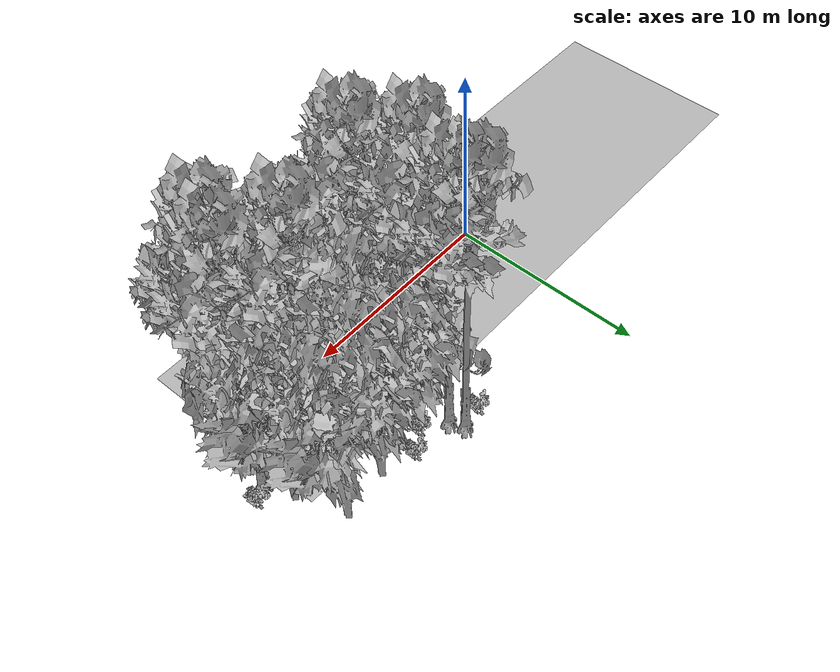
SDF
<sdf version="1.7">
 <world name="default">
  <model name="ground_plane">
   <static>1</static>
   <link name="link">
    <collision name="collision">
     <geometry><plane><normal>0 0 1</normal><size>100 100</size></plane></geometry>
     <surface><contact><ode><min_depth>0.01</min_depth><max_vel>0</max_vel></ode></contact></surface>
    </collision>
    <visual name="grass">
     <cast_shadows>0</cast_shadows>
     <geometry>
      <mesh>
       <scale>0.5814285714285714 0.18142857142857144 0.1</scale>
       <uri>file://grass_plane/meshes/grass_plane.dae</uri>
      </mesh>
     </geometry>
    </visual>
   </link>
  </model>
  <model name="Tree 20">
   <static>1</static>
   <pose>8.884630411769677 6.5836078916530845 0 1.57079 -0 0</pose>
   <link name="link">
    <collision name="collision">
     <geometry><mesh><scale>3.5 5 3.5</scale><uri>model://tree_9/meshes/tree_9.obj</uri></mesh></geometry>
    </collision>
    <visual name="visual">
     <geometry><mesh><scale>3.5 5 3.5</scale><uri>model://tree_9/meshes/tree_9.obj</uri></mesh></geometry>
    </visual>
   </link>
  </model>
  <model name="Tree 47">
   <static>1</static>
   <pose>9.675794774398533 2.2463097579045126 0 1.57079 -0 0</pose>
   <link name="link">
    <collision name="collision">
     <geometry><mesh><scale>3.5 5 3.5</scale><uri>model://tree_9/meshes/tree_9.obj</uri></mesh></geometry>
    </collision>
    <visual name="visual">
     <geometry><mesh><scale>3.5 5 3.5</scale><uri>model://tree_9/meshes/tree_9.obj</uri></mesh></geometry>
    </visual>
   </link>
  </model>
  <model name="Tree 59">
   <static>1</static>
   <pose>8.549104272013615 3.037445688734934 0 1.57079 -0 0</pose>
   <link name="link">
    <collision name="collision">
     <geometry><mesh><scale>3.5 5 3.5</scale><uri>model://tree_2/meshes/tree_2.obj</uri></mesh></geometry>
    </collision>
    <visual name="visual">
     <geometry><mesh><scale>3.5 5 3.5</scale><uri>model://tree_2/meshes/tree_2.obj</uri></mesh></geometry>
    </visual>
   </link>
  </model>
  <model name="Tree 64">
   <static>1</static>
   <pose>15.850261275609398 4.156127027135664 0 1.57079 -0 0</pose>
   <link name="link">
    <collision name="collision">
     <geometry><mesh><scale>3.5 5 3.5</scale><uri>model://tree_2/meshes/tree_2.obj</uri></mesh></geometry>
    </collision>
    <visual name="visual">
     <geometry><mesh><scale>3.5 5 3.5</scale><uri>model://tree_2/meshes/tree_2.obj</uri></mesh></geometry>
    </visual>
   </link>
  </model>
  <model name="Tree 103">
   <static>1</static>
   <pose>10.380141473272943 4.021757676331195 0 1.57079 -0 0</pose>
   <link name="link">
    <collision name="collision">
     <geometry><mesh><scale>3.5 5 3.5</scale><uri>model://tree_2/meshes/tree_2.obj</uri></mesh></geometry>
    </collision>
    <visual name="visual">
     <geometry><mesh><scale>3.5 5 3.5</scale><uri>model://tree_2/meshes/tree_2.obj</uri></mesh></geometry>
    </visual>
   </link>
  </model>
  <model name="Tree 134">
   <static>1</static>
   <pose>15.03134885523668 6.425880677965168 0 1.57079 -0 0</pose>
   <link name="link">
    <collision name="collision">
     <geometry><mesh><scale>3.5 5 3.5</scale><uri>model://tree_2/meshes/tree_2.obj</uri></mesh></geometry>
    </collision>
    <visual name="visual">
     <geometry><mesh><scale>3.5 5 3.5</scale><uri>model://tree_2/meshes/tree_2.obj</uri></mesh></geometry>
    </visual>
   </link>
  </model>
  <model name="Tree 139">
   <static>1</static>
   <pose>8.268799936547197 4.245124132416983 0 1.57079 -0 0</pose>
   <link name="link">
    <collision name="collision">
     <geometry><mesh><scale>3.5 5 3.5</scale><uri>model://tree_9/meshes/tree_9.obj</uri></mesh></geometry>
    </collision>
    <visual name="visual">
     <geometry><mesh><scale>3.5 5 3.5</scale><uri>model://tree_9/meshes/tree_9.obj</uri></mesh></geometry>
    </visual>
   </link>
  </model>
  <model name="Tree 152">
   <static>1</static>
   <pose>16.352432995173487 2.671429940965279 0 1.57079 -0 0</pose>
   <link name="link">
    <collision name="collision">
     <geometry><mesh><scale>3.5 5 3.5</scale><uri>model://tree_9/meshes/tree_9.obj</uri></mesh></geometry>
    </collision>
    <visual name="visual">
     <geometry><mesh><scale>3.5 5 3.5</scale><uri>model://tree_9/meshes/tree_9.obj</uri></mesh></geometry>
    </visual>
   </link>
  </model>
  <model name="Tree 165">
   <static>1</static>
   <pose>9.334816745533281 1.749533499932447 0 1.57079 -0 0</pose>
   <link name="link">
    <collision name="collision">
     <geometry><mesh><scale>3.5 5 3.5</scale><uri>model://tree_2/meshes/tree_2.obj</uri></mesh></geometry>
    </collision>
    <visual name="visual">
     <geometry><mesh><scale>3.5 5 3.5</scale><uri>model://tree_2/meshes/tree_2.obj</uri></mesh></geometry>
    </visual>
   </link>
  </model>
  <model name="Tree 253">
   <static>1</static>
   <pose>14.062127754926777 3.5908301212343545 0 1.57079 -0 0</pose>
   <link name="link">
    <collision name="collision">
     <geometry><mesh><scale>3.5 5 3.5</scale><uri>model://tree_9/meshes/tree_9.obj</uri></mesh></geometry>
    </collision>
    <visual name="visual">
     <geometry><mesh><scale>3.5 5 3.5</scale><uri>model://tree_9/meshes/tree_9.obj</uri></mesh></geometry>
    </visual>
   </link>
  </model>
  <model name="Tree 321">
   <static>1</static>
   <pose>9.345981192018506 1.0364678911690106 0 1.57079 -0 0</pose>
   <link name="link">
    <collision name="collision">
     <geometry><mesh><scale>3.5 5 3.5</scale><uri>model://tree_2/meshes/tree_2.obj</uri></mesh></geometry>
    </collision>
    <visual name="visual">
     <geometry><mesh><scale>3.5 5 3.5</scale><uri>model://tree_2/meshes/tree_2.obj</uri></mesh></geometry>
    </visual>
   </link>
  </model>
  <model name="Tree 332">
   <static>1</static>
   <pose>12.675262077874635 6.147937840983769 0 1.57079 -0 0</pose>
   <link name="link">
    <collision name="collision">
     <geometry><mesh><scale>3.5 5 3.5</scale><uri>model://tree_2/meshes/tree_2.obj</uri></mesh></geometry>
    </collision>
    <visual name="visual">
     <geometry><mesh><scale>3.5 5 3.5</scale><uri>model://tree_2/meshes/tree_2.obj</uri></mesh></geometry>
    </visual>
   </link>
  </model>
  <model name="Tree 352">
   <static>1</static>
   <pose>15.875128300795964 1.5041549247559942 0 1.57079 -0 0</pose>
   <link name="link">
    <collision name="collision">
     <geometry><mesh><scale>3.5 5 3.5</scale><uri>model://tree_9/meshes/tree_9.obj</uri></mesh></geometry>
    </collision>
    <visual name="visual">
     <geometry><mesh><scale>3.5 5 3.5</scale><uri>model://tree_9/meshes/tree_9.obj</uri></mesh></geometry>
    </visual>
   </link>
  </model>
  <model name="Tree 431">
   <static>1</static>
   <pose>8.601021629725501 7.2822944734730015 0 1.57079 -0 0</pose>
   <link name="link">
    <collision name="collision">
     <geometry><mesh><scale>3.5 5 3.5</scale><uri>model://tree_9/meshes/tree_9.obj</uri></mesh></geometry>
    </collision>
    <visual name="visual">
     <geometry><mesh><scale>3.5 5 3.5</scale><uri>model://tree_9/meshes/tree_9.obj</uri></mesh></geometry>
    </visual>
   </link>
  </model>
  <model name="Bush 45">
   <static>1</static>
   <pose>10.927154419139711 6.425829845174444 0 1.57079 -0 0</pose>
   <link name="link">
    <collision name="collision">
     <geometry><mesh><scale>2 2 2</scale><uri>model://bush_2/meshes/bush_2.obj</uri></mesh></geometry>
     <surface><contact><collide_without_contact>false</collide_without_contact></contact></surface>
    </collision>
    <visual name="visual">
     <geometry><mesh><scale>2 2 2</scale><uri>model://bush_2/meshes/bush_2.obj</uri></mesh></geometry>
    </visual>
   </link>
  </model>
  <model name="Bush 68">
   <static>1</static>
   <pose>13.503947892731553 4.327048822026953 0 1.57079 -0 0</pose>
   <link name="link">
    <collision name="collision">
     <geometry><mesh><scale>2 2 2</scale><uri>model://bush_3/meshes/bush_3.obj</uri></mesh></geometry>
     <surface><contact><collide_without_contact>false</collide_without_contact></contact></surface>
    </collision>
    <visual name="visual">
     <geometry><mesh><scale>2 2 2</scale><uri>model://bush_3/meshes/bush_3.obj</uri></mesh></geometry>
    </visual>
   </link>
  </model>
  <model name="Bush 99">
   <static>1</static>
   <pose>9.898636474722721 5.729131570955701 0 1.57079 -0 0</pose>
   <link name="link">
    <collision name="collision">
     <geometry><mesh><scale>2 2 2</scale><uri>model://bush_2/meshes/bush_2.obj</uri></mesh></geometry>
     <surface><contact><collide_without_contact>false</collide_without_contact></contact></surface>
    </collision>
    <visual name="visual">
     <geometry><mesh><scale>2 2 2</scale><uri>model://bush_2/meshes/bush_2.obj</uri></mesh></geometry>
    </visual>
   </link>
  </model>
  <model name="Bush 129">
   <static>1</static>
   <pose>9.296319956920556 -0.3870516530787942 0 1.57079 -0 0</pose>
   <link name="link">
    <collision name="collision">
     <geometry><mesh><scale>2 2 2</scale><uri>model://bush_2/meshes/bush_2.obj</uri></mesh></geometry>
     <surface><contact><collide_without_contact>false</collide_without_contact></contact></surface>
    </collision>
    <visual name="visual">
     <geometry><mesh><scale>2 2 2</scale><uri>model://bush_2/meshes/bush_2.obj</uri></mesh></geometry>
    </visual>
   </link>
  </model>
  <model name="Bush 175">
   <static>1</static>
   <pose>11.933636689424148 3.6874625579122338 0 1.57079 -0 0</pose>
   <link name="link">
    <collision name="collision">
     <geometry><mesh><scale>2 2 2</scale><uri>model://bush_2/meshes/bush_2.obj</uri></mesh></geometry>
     <surface><contact><collide_without_contact>false</collide_without_contact></contact></surface>
    </collision>
    <visual name="visual">
     <geometry><mesh><scale>2 2 2</scale><uri>model://bush_2/meshes/bush_2.obj</uri></mesh></geometry>
    </visual>
   </link>
  </model>
  <model name="Bush 208">
   <static>1</static>
   <pose>7.375412053413662 6.961428152693546 0 1.57079 -0 0</pose>
   <link name="link">
    <collision name="collision">
     <geometry><mesh><scale>2 2 2</scale><uri>model://bush_2/meshes/bush_2.obj</uri></mesh></geometry>
     <surface><contact><collide_without_contact>false</collide_without_contact></contact></surface>
    </collision>
    <visual name="visual">
     <geometry><mesh><scale>2 2 2</scale><uri>model://bush_2/meshes/bush_2.obj</uri></mesh></geometry>
    </visual>
   </link>
  </model>
  <model name="Bush 264">
   <static>1</static>
   <pose>16.901446580284997 2.9304627515344066 0 1.57079 -0 0</pose>
   <link name="link">
    <collision name="collision">
     <geometry><mesh><scale>2 2 2</scale><uri>model://bush_2/meshes/bush_2.obj</uri></mesh></geometry>
     <surface><contact><collide_without_contact>false</collide_without_contact></contact></surface>
    </collision>
    <visual name="visual">
     <geometry><mesh><scale>2 2 2</scale><uri>model://bush_2/meshes/bush_2.obj</uri></mesh></geometry>
    </visual>
   </link>
  </model>
  <model name="Bush 276">
   <static>1</static>
   <pose>14.273478136443906 5.578735973285465 0 1.57079 -0 0</pose>
   <link name="link">
    <collision name="collision">
     <geometry><mesh><scale>2 2 2</scale><uri>model://bush_2/meshes/bush_2.obj</uri></mesh></geometry>
     <surface><contact><collide_without_contact>false</collide_without_contact></contact></surface>
    </collision>
    <visual name="visual">
     <geometry><mesh><scale>2 2 2</scale><uri>model://bush_2/meshes/bush_2.obj</uri></mesh></geometry>
    </visual>
   </link>
  </model>
 </world>
</sdf>
